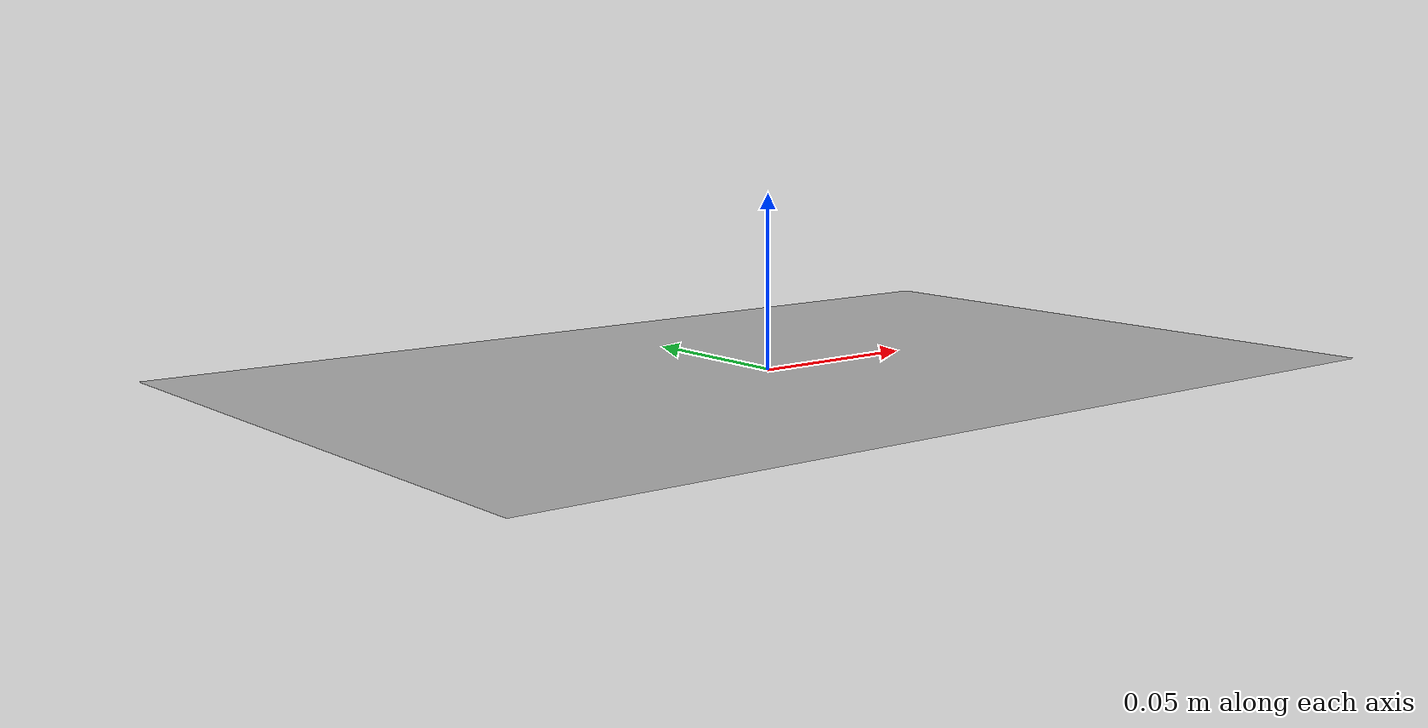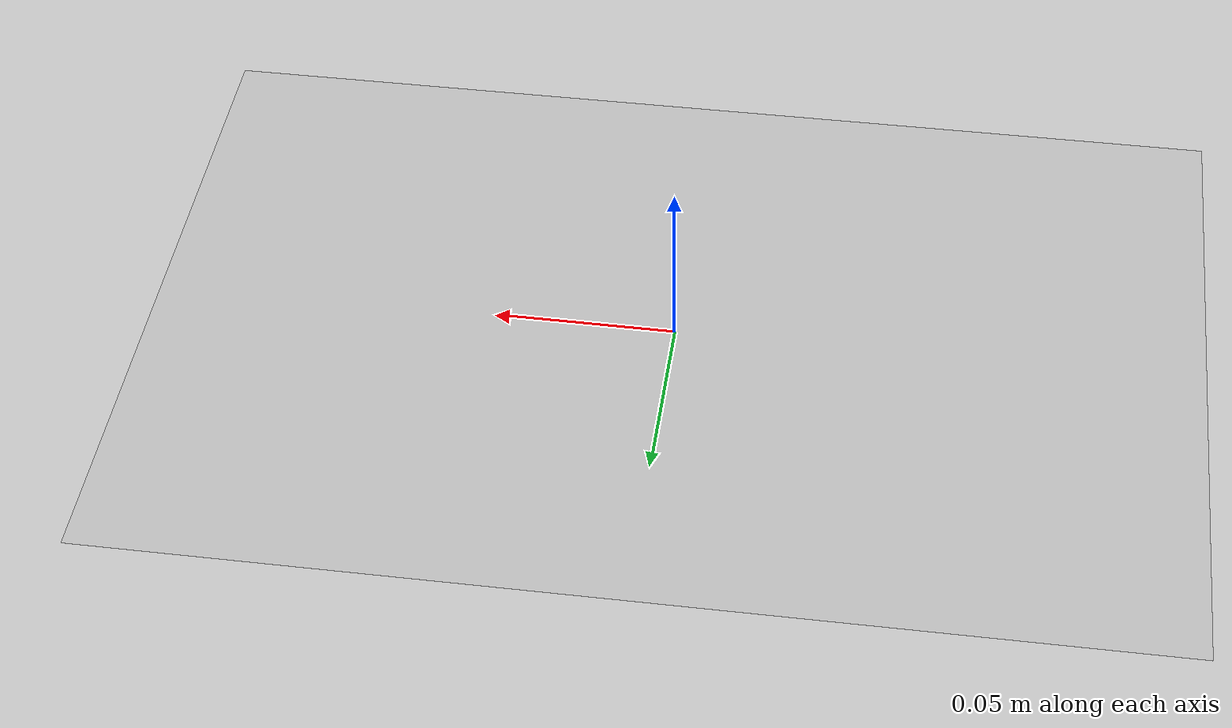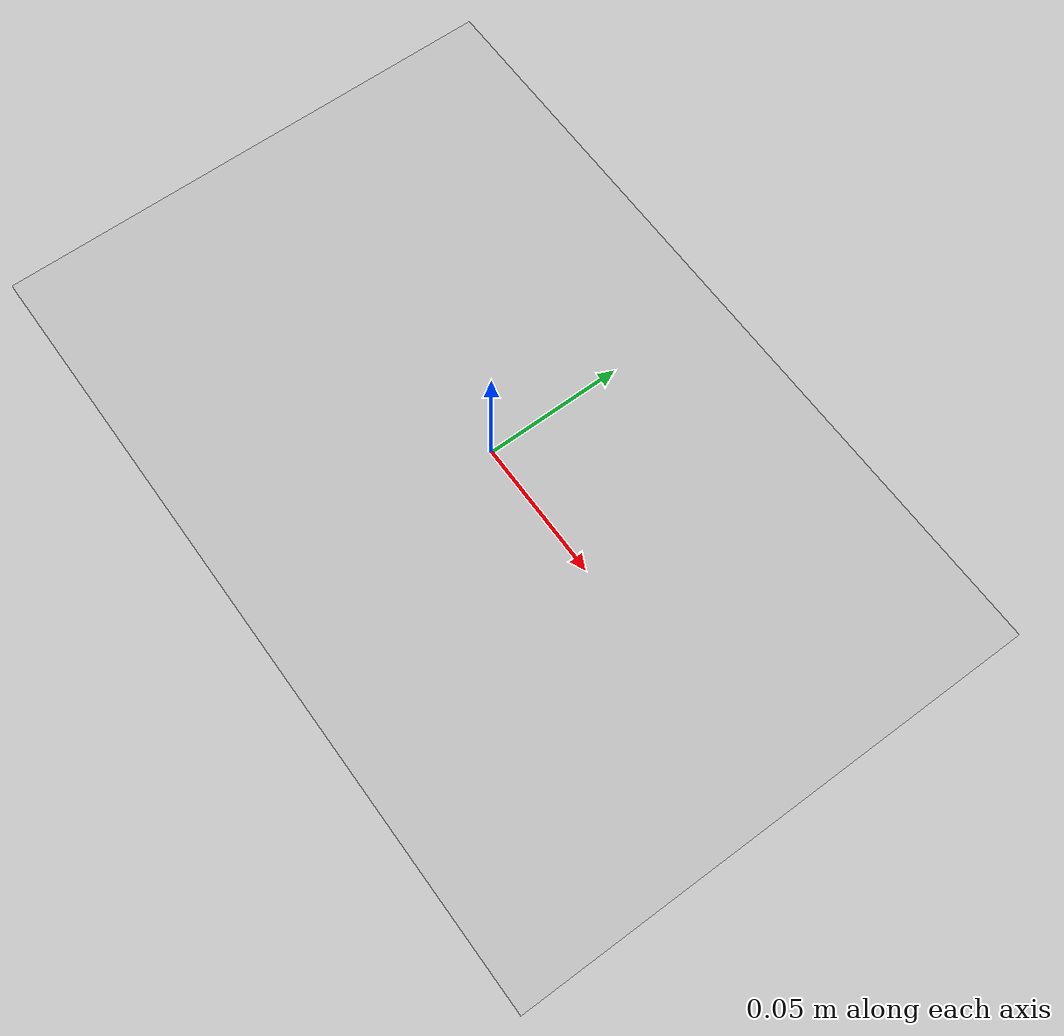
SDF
<sdf version="1.7">
  <model name="aruco_2">
    <static>true</static>
    <link name="aruco_2_link">
      <collision name="aruco_2_collision">
        <geometry>
          <mesh>
            <uri>model://aruco_2/model.dae</uri>
            <scale>1 1 1</scale>
          </mesh>
        </geometry>
      </collision>
      <visual name="aruco_2_visual">
        <geometry>
          <mesh>
            <uri>model://aruco_2/model.dae</uri>
            <scale>1 1 1</scale>
          </mesh>
        </geometry>
      </visual>
    </link>
  </model>
</sdf>
